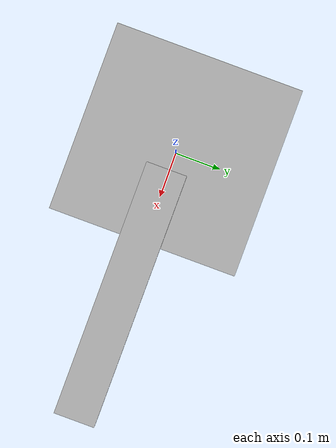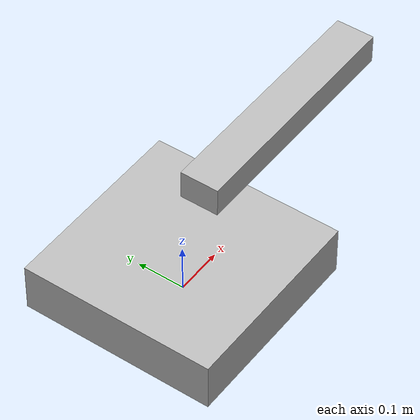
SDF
<?xml version="1.0"?>
<sdf version="1.9"><world name="lab"><light name="sun" type="directional"/><model name="swing">
  <link name="base"><visual name="v"><pose>0 0 0.05 0 0 0</pose><geometry><box><size>0.4 0.4 0.1</size></box></geometry></visual></link>
  <link name="arm"><pose relative_to="hinge">0.05 0 0 0 0 0</pose><visual name="v"><pose>0.25 0 0 0 0 0</pose><geometry><box><size>0.5 0.08 0.06</size></box></geometry></visual></link>
  <joint name="hinge" type="revolute"><pose relative_to="base">0 0 0.2 0 0 0</pose><parent>base</parent><child>arm</child><axis><xyz>0 1 0</xyz><limit><lower>-1.2</lower><upper>1.2</upper></limit></axis></joint>
</model></world></sdf>
